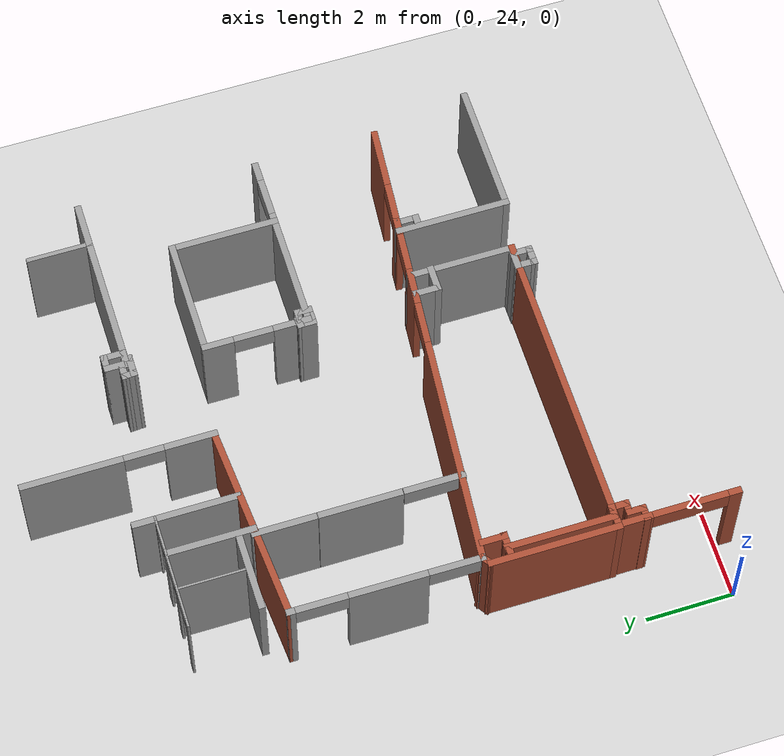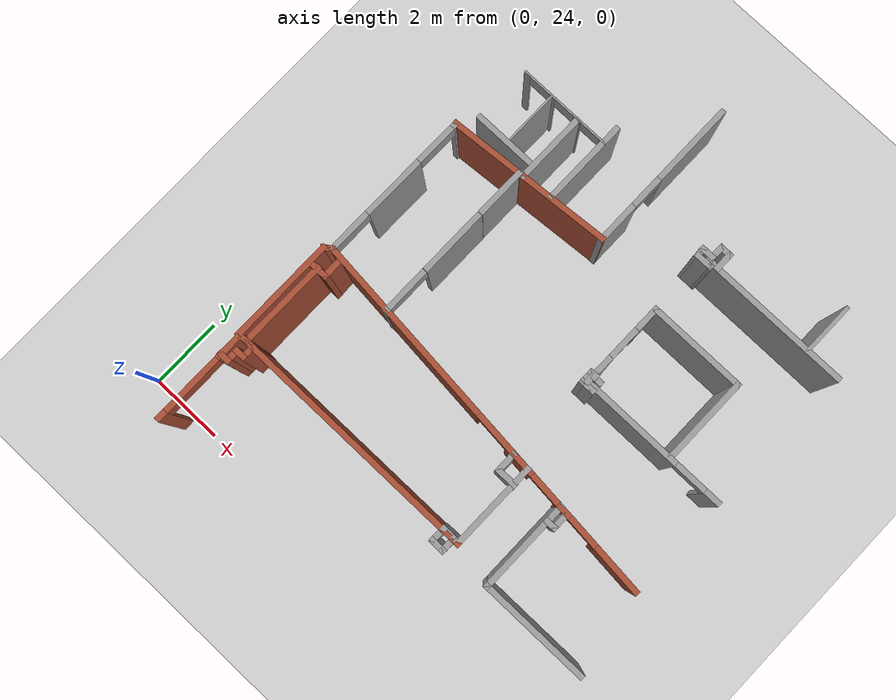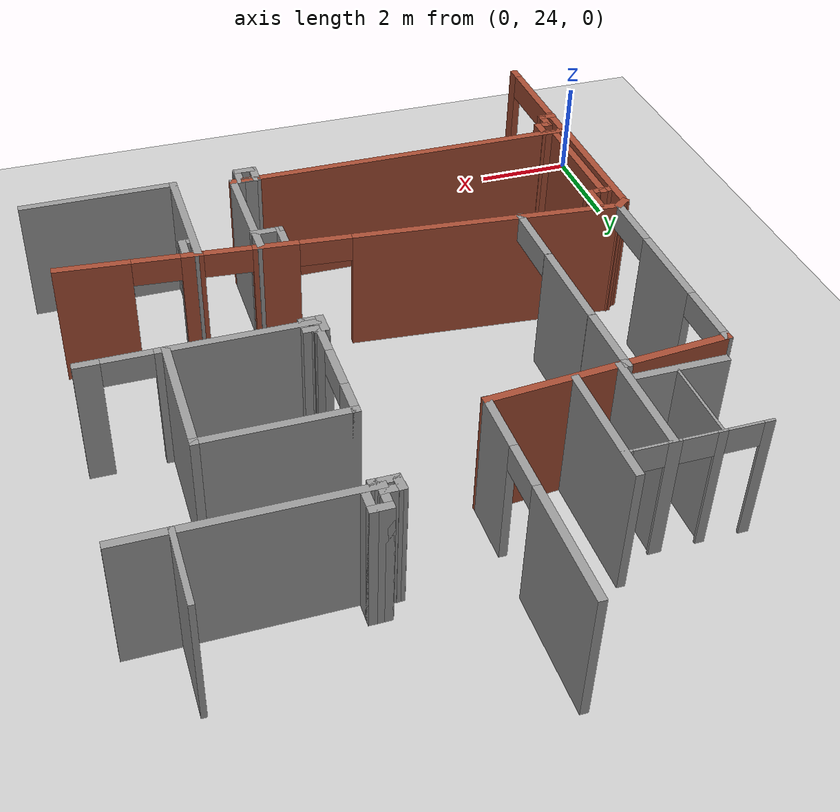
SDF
<sdf version="1.6">
 <world name="default">
  <model name="ground_plane">
   <static>1</static>
   <link name="link">
    <collision name="collision">
     <geometry><plane><normal>0 0 1</normal><size>100 100</size></plane></geometry>
     <surface><friction><ode><mu>100</mu><mu2>50</mu2></ode></friction></surface>
    </collision>
    <visual name="visual">
     <cast_shadows>0</cast_shadows>
     <geometry><plane><normal>0 0 1</normal><size>100 100</size></plane></geometry>
     <material>
      <script><uri>file://media/materials/scripts/gazebo.material</uri><name>Gazebo/Grey</name></script>
     </material>
    </visual>
   </link>
  </model>
  <model name="CVSSP">
   <pose>23.8714 24.094 0 0 -0 0</pose>
   <link name="Wall_383">
    <pose>-17.9783 11.9234 0 0 0 -1.5687</pose>
    <visual name="Wall_383_Visual_0">
     <pose>-1.04585 0 1.25 0 -0 0</pose>
     <geometry><box><size>2.30135 0.15 2.5</size></box></geometry>
     <material>
      <script><uri>file://media/materials/scripts/gazebo.material</uri><name>Gazebo/Grey</name></script>
      <ambient>0.588235 0.588235 0.588235 1</ambient>
     </material>
    </visual>
    <collision name="Wall_383_Collision_0">
     <geometry><box><size>2.30135 0.15 2.5</size></box></geometry>
     <pose>-1.04585 0 1.25 0 -0 0</pose>
    </collision>
    <visual name="Wall_383_Visual_1">
     <pose>1.60067 0 1.25 0 -0 0</pose>
     <geometry><box><size>1.1917 0.15 2.5</size></box></geometry>
     <material>
      <script><uri>file://media/materials/scripts/gazebo.material</uri><name>Gazebo/Grey</name></script>
      <ambient>0.588235 0.588235 0.588235 1</ambient>
     </material>
    </visual>
    <collision name="Wall_383_Collision_1">
     <geometry><box><size>1.1917 0.15 2.5</size></box></geometry>
     <pose>1.60067 0 1.25 0 -0 0</pose>
    </collision>
    <visual name="Wall_383_Visual_2">
     <pose>0.554823 0 2.25 0 -0 0</pose>
     <geometry><box><size>0.9 0.15 0.5</size></box></geometry>
     <material>
      <script><uri>file://media/materials/scripts/gazebo.material</uri><name>Gazebo/Grey</name></script>
      <ambient>0.588235 0.588235 0.588235 1</ambient>
     </material>
    </visual>
    <collision name="Wall_383_Collision_2">
     <geometry><box><size>0.9 0.15 0.5</size></box></geometry>
     <pose>0.554823 0 2.25 0 -0 0</pose>
    </collision>
   </link>
   <link name="Wall_384">
    <collision name="Wall_384_Collision">
     <geometry><box><size>4.62239 0.15 2.5</size></box></geometry>
     <pose>0 0 1.25 0 -0 0</pose>
    </collision>
    <visual name="Wall_384_Visual">
     <pose>0 0 1.25 0 -0 0</pose>
     <geometry><box><size>4.62239 0.15 2.5</size></box></geometry>
     <material>
      <script><uri>file://media/materials/scripts/gazebo.material</uri><name>Gazebo/Bricks</name></script>
      <ambient>1 1 1 1</ambient>
     </material>
    </visual>
    <pose>-20.2033 9.63933 0 0 0 -3.06433</pose>
   </link>
   <link name="Wall_385">
    <pose>-22.4439 7.35474 0 0 0 -1.57601</pose>
    <visual name="Wall_385_Visual_0">
     <pose>-2.08672 0 1.25 0 -0 0</pose>
     <geometry><box><size>0.200399 0.15 2.5</size></box></geometry>
     <material>
      <script><uri>file://media/materials/scripts/gazebo.material</uri><name>Gazebo/Grey</name></script>
      <ambient>0.588235 0.588235 0.588235 1</ambient>
     </material>
    </visual>
    <collision name="Wall_385_Collision_0">
     <geometry><box><size>0.200399 0.15 2.5</size></box></geometry>
     <pose>-2.08672 0 1.25 0 -0 0</pose>
    </collision>
    <visual name="Wall_385_Visual_1">
     <pose>0.046569 0 1.25 0 -0 0</pose>
     <geometry><box><size>1.75817 0.15 2.5</size></box></geometry>
     <material>
      <script><uri>file://media/materials/scripts/gazebo.material</uri><name>Gazebo/Grey</name></script>
      <ambient>0.588235 0.588235 0.588235 1</ambient>
     </material>
    </visual>
    <collision name="Wall_385_Collision_1">
     <geometry><box><size>1.75817 0.15 2.5</size></box></geometry>
     <pose>0.046569 0 1.25 0 -0 0</pose>
    </collision>
    <visual name="Wall_385_Visual_2">
     <pose>0.925336 0 1.25 0 -0 0</pose>
     <geometry><box><size>0.000635 0.15 2.5</size></box></geometry>
     <material>
      <script><uri>file://media/materials/scripts/gazebo.material</uri><name>Gazebo/Grey</name></script>
      <ambient>0.588235 0.588235 0.588235 1</ambient>
     </material>
    </visual>
    <collision name="Wall_385_Collision_2">
     <geometry><box><size>0.000635 0.15 2.5</size></box></geometry>
     <pose>0.925336 0 1.25 0 -0 0</pose>
    </collision>
    <visual name="Wall_385_Visual_3">
     <pose>2.12229 0 1.25 0 -0 0</pose>
     <geometry><box><size>0.129262 0.15 2.5</size></box></geometry>
     <material>
      <script><uri>file://media/materials/scripts/gazebo.material</uri><name>Gazebo/Grey</name></script>
      <ambient>0.588235 0.588235 0.588235 1</ambient>
     </material>
    </visual>
    <collision name="Wall_385_Collision_3">
     <geometry><box><size>0.129262 0.15 2.5</size></box></geometry>
     <pose>2.12229 0 1.25 0 -0 0</pose>
    </collision>
    <visual name="Wall_385_Visual_4">
     <pose>-1.40968 0 2.25 0 -0 0</pose>
     <geometry><box><size>1.15368 0.15 0.5</size></box></geometry>
     <material>
      <script><uri>file://media/materials/scripts/gazebo.material</uri><name>Gazebo/Grey</name></script>
      <ambient>0.588235 0.588235 0.588235 1</ambient>
     </material>
    </visual>
    <collision name="Wall_385_Collision_4">
     <geometry><box><size>1.15368 0.15 0.5</size></box></geometry>
     <pose>-1.40968 0 2.25 0 -0 0</pose>
    </collision>
    <visual name="Wall_385_Visual_5">
     <pose>1.49165 0 2.25 0 -0 0</pose>
     <geometry><box><size>1.132 0.15 0.5</size></box></geometry>
     <material>
      <script><uri>file://media/materials/scripts/gazebo.material</uri><name>Gazebo/Grey</name></script>
      <ambient>0.588235 0.588235 0.588235 1</ambient>
     </material>
    </visual>
    <collision name="Wall_385_Collision_5">
     <geometry><box><size>1.132 0.15 0.5</size></box></geometry>
     <pose>1.49165 0 2.25 0 -0 0</pose>
    </collision>
    <visual name="Wall_385_Visual_6">
     <pose>1.49165 0 2.25 0 -0 0</pose>
     <geometry><box><size>1.132 0.15 0.5</size></box></geometry>
     <material>
      <script><uri>file://media/materials/scripts/gazebo.material</uri><name>Gazebo/Grey</name></script>
      <ambient>0.588235 0.588235 0.588235 1</ambient>
     </material>
    </visual>
    <collision name="Wall_385_Collision_6">
     <geometry><box><size>1.132 0.15 0.5</size></box></geometry>
     <pose>1.49165 0 2.25 0 -0 0</pose>
    </collision>
   </link>
   <link name="Wall_386">
    <pose>-17.129 4.76187 0 0 0 -0.090044</pose>
    <visual name="Wall_386_Visual_0">
     <pose>-2.75908 0 1.25 0 -0 0</pose>
     <geometry><box><size>5.32665 0.15 2.5</size></box></geometry>
     <material>
      <script><uri>file://media/materials/scripts/gazebo.material</uri><name>Gazebo/Bricks</name></script>
      <ambient>1 1 1 1</ambient>
     </material>
    </visual>
    <collision name="Wall_386_Collision_0">
     <geometry><box><size>5.32665 0.15 2.5</size></box></geometry>
     <pose>-2.75908 0 1.25 0 -0 0</pose>
    </collision>
    <visual name="Wall_386_Visual_1">
     <pose>1.33587 0 1.25 0 -0 0</pose>
     <geometry><box><size>0.878962 0.15 2.5</size></box></geometry>
     <material>
      <script><uri>file://media/materials/scripts/gazebo.material</uri><name>Gazebo/Bricks</name></script>
      <ambient>1 1 1 1</ambient>
     </material>
    </visual>
    <collision name="Wall_386_Collision_1">
     <geometry><box><size>0.878962 0.15 2.5</size></box></geometry>
     <pose>1.33587 0 1.25 0 -0 0</pose>
    </collision>
    <visual name="Wall_386_Visual_2">
     <pose>2.88503 0 1.25 0 -0 0</pose>
     <geometry><box><size>0.419343 0.15 2.5</size></box></geometry>
     <material>
      <script><uri>file://media/materials/scripts/gazebo.material</uri><name>Gazebo/Bricks</name></script>
      <ambient>1 1 1 1</ambient>
     </material>
    </visual>
    <collision name="Wall_386_Collision_2">
     <geometry><box><size>0.419343 0.15 2.5</size></box></geometry>
     <pose>2.88503 0 1.25 0 -0 0</pose>
    </collision>
    <visual name="Wall_386_Visual_3">
     <pose>4.70855 0 1.25 0 -0 0</pose>
     <geometry><box><size>1.4277 0.15 2.5</size></box></geometry>
     <material>
      <script><uri>file://media/materials/scripts/gazebo.material</uri><name>Gazebo/Bricks</name></script>
      <ambient>1 1 1 1</ambient>
     </material>
    </visual>
    <collision name="Wall_386_Collision_3">
     <geometry><box><size>1.4277 0.15 2.5</size></box></geometry>
     <pose>4.70855 0 1.25 0 -0 0</pose>
    </collision>
    <visual name="Wall_386_Visual_4">
     <pose>0.400321 0 2.25 0 -0 0</pose>
     <geometry><box><size>0.992148 0.15 0.5</size></box></geometry>
     <material>
      <script><uri>file://media/materials/scripts/gazebo.material</uri><name>Gazebo/Bricks</name></script>
      <ambient>1 1 1 1</ambient>
     </material>
    </visual>
    <collision name="Wall_386_Collision_4">
     <geometry><box><size>0.992148 0.15 0.5</size></box></geometry>
     <pose>0.400321 0 2.25 0 -0 0</pose>
    </collision>
    <visual name="Wall_386_Visual_5">
     <pose>2.22536 0 2.25 0 -0 0</pose>
     <geometry><box><size>0.9 0.15 0.5</size></box></geometry>
     <material>
      <script><uri>file://media/materials/scripts/gazebo.material</uri><name>Gazebo/Bricks</name></script>
      <ambient>1 1 1 1</ambient>
     </material>
    </visual>
    <collision name="Wall_386_Collision_5">
     <geometry><box><size>0.9 0.15 0.5</size></box></geometry>
     <pose>2.22536 0 2.25 0 -0 0</pose>
    </collision>
    <visual name="Wall_386_Visual_6">
     <pose>3.5447 0 2.25 0 -0 0</pose>
     <geometry><box><size>0.9 0.15 0.5</size></box></geometry>
     <material>
      <script><uri>file://media/materials/scripts/gazebo.material</uri><name>Gazebo/Bricks</name></script>
      <ambient>1 1 1 1</ambient>
     </material>
    </visual>
    <collision name="Wall_386_Collision_6">
     <geometry><box><size>0.9 0.15 0.5</size></box></geometry>
     <pose>3.5447 0 2.25 0 -0 0</pose>
    </collision>
   </link>
   <link name="Wall_389">
    <pose>-20.4957 7.35057 0 0 -0 1.5708</pose>
    <visual name="Wall_389_Visual_0">
     <pose>-2.30009 0 1.25 0 -0 0</pose>
     <geometry><box><size>0.14981 0.15 2.5</size></box></geometry>
     <material>
      <script><uri>file://media/materials/scripts/gazebo.material</uri><name>Gazebo/Grey</name></script>
      <ambient>0.588235 0.588235 0.588235 1</ambient>
     </material>
    </visual>
    <collision name="Wall_389_Collision_0">
     <geometry><box><size>0.14981 0.15 2.5</size></box></geometry>
     <pose>-2.30009 0 1.25 0 -0 0</pose>
    </collision>
    <visual name="Wall_389_Visual_1">
     <pose>-0.035618 0 1.25 0 -0 0</pose>
     <geometry><box><size>1.88714 0.15 2.5</size></box></geometry>
     <material>
      <script><uri>file://media/materials/scripts/gazebo.material</uri><name>Gazebo/Grey</name></script>
      <ambient>0.588235 0.588235 0.588235 1</ambient>
     </material>
    </visual>
    <collision name="Wall_389_Collision_1">
     <geometry><box><size>1.88714 0.15 2.5</size></box></geometry>
     <pose>-0.035618 0 1.25 0 -0 0</pose>
    </collision>
    <visual name="Wall_389_Visual_2">
     <pose>1.64628 0 1.25 0 -0 0</pose>
     <geometry><box><size>1.45744 0.15 2.5</size></box></geometry>
     <material>
      <script><uri>file://media/materials/scripts/gazebo.material</uri><name>Gazebo/Grey</name></script>
      <ambient>0.588235 0.588235 0.588235 1</ambient>
     </material>
    </visual>
    <collision name="Wall_389_Collision_2">
     <geometry><box><size>1.45744 0.15 2.5</size></box></geometry>
     <pose>1.64628 0 1.25 0 -0 0</pose>
    </collision>
    <visual name="Wall_389_Visual_3">
     <pose>2.27598 0 1.25 0 -0 0</pose>
     <geometry><box><size>0.198046 0.15 2.5</size></box></geometry>
     <material>
      <script><uri>file://media/materials/scripts/gazebo.material</uri><name>Gazebo/Grey</name></script>
      <ambient>0.588235 0.588235 0.588235 1</ambient>
     </material>
    </visual>
    <collision name="Wall_389_Collision_3">
     <geometry><box><size>0.198046 0.15 2.5</size></box></geometry>
     <pose>2.27598 0 1.25 0 -0 0</pose>
    </collision>
    <visual name="Wall_389_Visual_4">
     <pose>-1.60696 0 2.25 0 -0 0</pose>
     <geometry><box><size>1.23646 0.15 0.5</size></box></geometry>
     <material>
      <script><uri>file://media/materials/scripts/gazebo.material</uri><name>Gazebo/Grey</name></script>
      <ambient>0.588235 0.588235 0.588235 1</ambient>
     </material>
    </visual>
    <collision name="Wall_389_Collision_4">
     <geometry><box><size>1.23646 0.15 0.5</size></box></geometry>
     <pose>-1.60696 0 2.25 0 -0 0</pose>
    </collision>
    <visual name="Wall_389_Visual_5">
     <pose>0.912756 0 2.25 0 -0 0</pose>
     <geometry><box><size>0.009604 0.15 0.5</size></box></geometry>
     <material>
      <script><uri>file://media/materials/scripts/gazebo.material</uri><name>Gazebo/Grey</name></script>
      <ambient>0.588235 0.588235 0.588235 1</ambient>
     </material>
    </visual>
    <collision name="Wall_389_Collision_5">
     <geometry><box><size>0.009604 0.15 0.5</size></box></geometry>
     <pose>0.912756 0 2.25 0 -0 0</pose>
    </collision>
   </link>
   <link name="Wall_398">
    <collision name="Wall_398_Collision">
     <geometry><box><size>2.41151 0.15 2.5</size></box></geometry>
     <pose>0 0 1.25 0 -0 0</pose>
    </collision>
    <visual name="Wall_398_Visual">
     <pose>0 0 1.25 0 -0 0</pose>
     <geometry><box><size>2.41151 0.15 2.5</size></box></geometry>
     <material>
      <script><uri>file://media/materials/scripts/gazebo.material</uri><name>Gazebo/Grey</name></script>
      <ambient>1 1 1 1</ambient>
     </material>
    </visual>
    <pose>-19.5452 10.8682 0 0 0 -1.5708</pose>
   </link>
   <link name="Wall_401">
    <collision name="Wall_401_Collision">
     <geometry><box><size>2.01472 0.15 2.5</size></box></geometry>
     <pose>0 0 1.25 0 -0 0</pose>
    </collision>
    <visual name="Wall_401_Visual">
     <pose>0 0 1.25 0 -0 0</pose>
     <geometry><box><size>2.01472 0.15 2.5</size></box></geometry>
     <material>
      <script><uri>file://media/materials/scripts/gazebo.material</uri><name>Gazebo/Grey</name></script>
      <ambient>1 1 1 1</ambient>
     </material>
    </visual>
    <pose>-20.3783 10.5641 0 0 -0 1.5708</pose>
   </link>
   <link name="Wall_403">
    <collision name="Wall_403_Collision">
     <geometry><box><size>1.75 0.15 2.5</size></box></geometry>
     <pose>0 0 1.25 0 -0 0</pose>
    </collision>
    <visual name="Wall_403_Visual">
     <pose>0 0 1.25 0 -0 0</pose>
     <geometry><box><size>1.75 0.15 2.5</size></box></geometry>
     <material>
      <script><uri>file://media/materials/scripts/gazebo.material</uri><name>Gazebo/Grey</name></script>
      <ambient>1 1 1 1</ambient>
     </material>
    </visual>
    <pose>-21.3108 9.97555 0 0 -0 0</pose>
   </link>
   <link name="Wall_405">
    <collision name="Wall_405_Collision">
     <geometry><box><size>1.558 0.05 2.5</size></box></geometry>
     <pose>0 0 1.25 0 -0 0</pose>
    </collision>
    <visual name="Wall_405_Visual">
     <pose>0 0 1.25 0 -0 0</pose>
     <geometry><box><size>1.558 0.05 2.5</size></box></geometry>
     <material>
      <script><uri>file://media/materials/scripts/gazebo.material</uri><name>Gazebo/Grey</name></script>
      <ambient>1 1 1 1</ambient>
     </material>
    </visual>
    <pose>-21.2251 10.756 0 0 -0 1.5708</pose>
   </link>
   <link name="Wall_409">
    <pose>-20.7979 11.549 0 0 -0 0</pose>
    <visual name="Wall_409_Visual_0">
     <pose>-1.22709 0 1.25 0 -0 0</pose>
     <geometry><box><size>0.196113 0.05 2.5</size></box></geometry>
     <material>
      <script><uri>file://media/materials/scripts/gazebo.material</uri><name>Gazebo/Grey</name></script>
      <ambient>1 1 1 1</ambient>
     </material>
    </visual>
    <collision name="Wall_409_Collision_0">
     <geometry><box><size>0.196113 0.05 2.5</size></box></geometry>
     <pose>-1.22709 0 1.25 0 -0 0</pose>
    </collision>
    <visual name="Wall_409_Visual_1">
     <pose>-0.41515 0 1.25 0 -0 0</pose>
     <geometry><box><size>0.172188 0.05 2.5</size></box></geometry>
     <material>
      <script><uri>file://media/materials/scripts/gazebo.material</uri><name>Gazebo/Grey</name></script>
      <ambient>1 1 1 1</ambient>
     </material>
    </visual>
    <collision name="Wall_409_Collision_1">
     <geometry><box><size>0.172188 0.05 2.5</size></box></geometry>
     <pose>-0.41515 0 1.25 0 -0 0</pose>
    </collision>
    <visual name="Wall_409_Visual_2">
     <pose>0.406657 0 1.25 0 -0 0</pose>
     <geometry><box><size>0.24285 0.05 2.5</size></box></geometry>
     <material>
      <script><uri>file://media/materials/scripts/gazebo.material</uri><name>Gazebo/Grey</name></script>
      <ambient>1 1 1 1</ambient>
     </material>
    </visual>
    <collision name="Wall_409_Collision_2">
     <geometry><box><size>0.24285 0.05 2.5</size></box></geometry>
     <pose>0.406657 0 1.25 0 -0 0</pose>
    </collision>
    <visual name="Wall_409_Visual_3">
     <pose>1.22248 0 1.25 0 -0 0</pose>
     <geometry><box><size>0.205332 0.05 2.5</size></box></geometry>
     <material>
      <script><uri>file://media/materials/scripts/gazebo.material</uri><name>Gazebo/Grey</name></script>
      <ambient>1 1 1 1</ambient>
     </material>
    </visual>
    <collision name="Wall_409_Collision_3">
     <geometry><box><size>0.205332 0.05 2.5</size></box></geometry>
     <pose>1.22248 0 1.25 0 -0 0</pose>
    </collision>
    <visual name="Wall_409_Visual_4">
     <pose>-0.815138 0 2.25 0 -0 0</pose>
     <geometry><box><size>0.627788 0.05 0.5</size></box></geometry>
     <material>
      <script><uri>file://media/materials/scripts/gazebo.material</uri><name>Gazebo/Grey</name></script>
      <ambient>1 1 1 1</ambient>
     </material>
    </visual>
    <collision name="Wall_409_Collision_4">
     <geometry><box><size>0.627788 0.05 0.5</size></box></geometry>
     <pose>-0.815138 0 2.25 0 -0 0</pose>
    </collision>
    <visual name="Wall_409_Visual_5">
     <pose>-0.021912 0 2.25 0 -0 0</pose>
     <geometry><box><size>0.614288 0.05 0.5</size></box></geometry>
     <material>
      <script><uri>file://media/materials/scripts/gazebo.material</uri><name>Gazebo/Grey</name></script>
      <ambient>1 1 1 1</ambient>
     </material>
    </visual>
    <collision name="Wall_409_Collision_5">
     <geometry><box><size>0.614288 0.05 0.5</size></box></geometry>
     <pose>-0.021912 0 2.25 0 -0 0</pose>
    </collision>
    <visual name="Wall_409_Visual_6">
     <pose>0.823948 0 2.25 0 -0 0</pose>
     <geometry><box><size>0.591732 0.05 0.5</size></box></geometry>
     <material>
      <script><uri>file://media/materials/scripts/gazebo.material</uri><name>Gazebo/Grey</name></script>
      <ambient>1 1 1 1</ambient>
     </material>
    </visual>
    <collision name="Wall_409_Collision_6">
     <geometry><box><size>0.591732 0.05 0.5</size></box></geometry>
     <pose>0.823948 0 2.25 0 -0 0</pose>
    </collision>
   </link>
   <link name="Wall_411">
    <pose>-13.8531 7.07942 0 0 -0 3.14159</pose>
    <visual name="Wall_411_Visual_0">
     <pose>-1.88996 0 1.25 0 -0 0</pose>
     <geometry><box><size>0.470089 0.15 2.5</size></box></geometry>
     <material>
      <script><uri>file://media/materials/scripts/gazebo.material</uri><name>Gazebo/Grey</name></script>
      <ambient>0.588235 0.588235 0.588235 1</ambient>
     </material>
    </visual>
    <collision name="Wall_411_Collision_0">
     <geometry><box><size>0.470089 0.15 2.5</size></box></geometry>
     <pose>-1.88996 0 1.25 0 -0 0</pose>
    </collision>
    <visual name="Wall_411_Visual_1">
     <pose>0.685044 0 1.25 0 -0 0</pose>
     <geometry><box><size>2.87991 0.15 2.5</size></box></geometry>
     <material>
      <script><uri>file://media/materials/scripts/gazebo.material</uri><name>Gazebo/Grey</name></script>
      <ambient>0.588235 0.588235 0.588235 1</ambient>
     </material>
    </visual>
    <collision name="Wall_411_Collision_1">
     <geometry><box><size>2.87991 0.15 2.5</size></box></geometry>
     <pose>0.685044 0 1.25 0 -0 0</pose>
    </collision>
    <visual name="Wall_411_Visual_2">
     <pose>-1.20491 0 2.25 0 -0 0</pose>
     <geometry><box><size>0.9 0.15 0.5</size></box></geometry>
     <material>
      <script><uri>file://media/materials/scripts/gazebo.material</uri><name>Gazebo/Grey</name></script>
      <ambient>0.588235 0.588235 0.588235 1</ambient>
     </material>
    </visual>
    <collision name="Wall_411_Collision_2">
     <geometry><box><size>0.9 0.15 0.5</size></box></geometry>
     <pose>-1.20491 0 2.25 0 -0 0</pose>
    </collision>
   </link>
   <link name="Wall_412">
    <pose>-15.9031 8.25442 0 0 -0 1.5708</pose>
    <visual name="Wall_412_Visual_0">
     <pose>-0.812626 0 1.25 0 -0 0</pose>
     <geometry><box><size>0.874747 0.15 2.5</size></box></geometry>
     <material>
      <script><uri>file://media/materials/scripts/gazebo.material</uri><name>Gazebo/Grey</name></script>
      <ambient>1 1 1 1</ambient>
     </material>
    </visual>
    <collision name="Wall_412_Collision_0">
     <geometry><box><size>0.874747 0.15 2.5</size></box></geometry>
     <pose>-0.812626 0 1.25 0 -0 0</pose>
    </collision>
    <visual name="Wall_412_Visual_1">
     <pose>0.887374 0 1.25 0 -0 0</pose>
     <geometry><box><size>0.725253 0.15 2.5</size></box></geometry>
     <material>
      <script><uri>file://media/materials/scripts/gazebo.material</uri><name>Gazebo/Grey</name></script>
      <ambient>1 1 1 1</ambient>
     </material>
    </visual>
    <collision name="Wall_412_Collision_1">
     <geometry><box><size>0.725253 0.15 2.5</size></box></geometry>
     <pose>0.887374 0 1.25 0 -0 0</pose>
    </collision>
    <visual name="Wall_412_Visual_2">
     <pose>0.074747 0 2.25 0 -0 0</pose>
     <geometry><box><size>0.9 0.15 0.5</size></box></geometry>
     <material>
      <script><uri>file://media/materials/scripts/gazebo.material</uri><name>Gazebo/Grey</name></script>
      <ambient>1 1 1 1</ambient>
     </material>
    </visual>
    <collision name="Wall_412_Collision_2">
     <geometry><box><size>0.9 0.15 0.5</size></box></geometry>
     <pose>0.074747 0 2.25 0 -0 0</pose>
    </collision>
   </link>
   <link name="Wall_413">
    <collision name="Wall_413_Collision">
     <geometry><box><size>2.75 0.15 2.5</size></box></geometry>
     <pose>0 0 1.25 0 -0 0</pose>
    </collision>
    <visual name="Wall_413_Visual">
     <pose>0 0 1.25 0 -0 0</pose>
     <geometry><box><size>2.75 0.15 2.5</size></box></geometry>
     <material>
      <script><uri>file://media/materials/scripts/gazebo.material</uri><name>Gazebo/Grey</name></script>
      <ambient>0.588235 0.588235 0.588235 1</ambient>
     </material>
    </visual>
    <pose>-14.6031 9.42942 0 0 -0 0</pose>
   </link>
   <link name="Wall_414">
    <collision name="Wall_414_Collision">
     <geometry><box><size>2.5 0.15 2.5</size></box></geometry>
     <pose>0 0 1.25 0 -0 0</pose>
    </collision>
    <visual name="Wall_414_Visual">
     <pose>0 0 1.25 0 -0 0</pose>
     <geometry><box><size>2.5 0.15 2.5</size></box></geometry>
     <material>
      <script><uri>file://media/materials/scripts/gazebo.material</uri><name>Gazebo/Grey</name></script>
      <ambient>0.588235 0.588235 0.588235 1</ambient>
     </material>
    </visual>
    <pose>-13.3031 8.25442 0 0 0 -1.5708</pose>
   </link>
   <link name="Wall_417">
    <collision name="Wall_417_Collision">
     <geometry><box><size>4.25 0.15 2.5</size></box></geometry>
     <pose>0 0 1.25 0 -0 0</pose>
    </collision>
    <visual name="Wall_417_Visual">
     <pose>0 0 1.25 0 -0 0</pose>
     <geometry><box><size>4.25 0.15 2.5</size></box></geometry>
     <material>
      <script><uri>file://media/materials/scripts/gazebo.material</uri><name>Gazebo/Grey</name></script>
      <ambient>1 1 1 1</ambient>
     </material>
    </visual>
    <pose>-13.7515 11.1539 0 0 -0 0</pose>
   </link>
   <link name="Wall_419">
    <collision name="Wall_419_Collision">
     <geometry><box><size>1.502 0.1 2.5</size></box></geometry>
     <pose>0 0 1.25 0 -0 0</pose>
    </collision>
    <visual name="Wall_419_Visual">
     <pose>0 0 1.25 0 -0 0</pose>
     <geometry><box><size>1.502 0.1 2.5</size></box></geometry>
     <material>
      <script><uri>file://media/materials/scripts/gazebo.material</uri><name>Gazebo/Grey</name></script>
      <ambient>0.588235 0.588235 0.588235 1</ambient>
     </material>
    </visual>
    <pose>-12.6454 11.8362 0 0 -0 1.5708</pose>
   </link>
   <link name="Wall_426">
    <collision name="Wall_426_Collision">
     <geometry><box><size>2.5 0.15 2.5</size></box></geometry>
     <pose>0 0 1.25 0 -0 0</pose>
    </collision>
    <visual name="Wall_426_Visual">
     <pose>0 0 1.25 0 -0 0</pose>
     <geometry><box><size>2.5 0.15 2.5</size></box></geometry>
     <material>
      <script><uri>file://media/materials/scripts/gazebo.material</uri><name>Gazebo/Grey</name></script>
      <ambient>0.588235 0.588235 0.588235 1</ambient>
     </material>
    </visual>
    <pose>-15.526 3.44298 0 0 0 -1.5708</pose>
   </link>
   <link name="Wall_427">
    <collision name="Wall_427_Collision">
     <geometry><box><size>7.25 0.15 2.5</size></box></geometry>
     <pose>0 0 1.25 0 -0 0</pose>
    </collision>
    <visual name="Wall_427_Visual">
     <pose>0 0 1.25 0 -0 0</pose>
     <geometry><box><size>7.25 0.15 2.5</size></box></geometry>
     <material>
      <script><uri>file://media/materials/scripts/gazebo.material</uri><name>Gazebo/Bricks</name></script>
      <ambient>1 1 1 1</ambient>
     </material>
    </visual>
    <pose>-19.076 2.26798 0 0 -0 3.14159</pose>
   </link>
   <link name="Wall_428">
    <collision name="Wall_428_Collision">
     <geometry><box><size>3 0.15 2.5</size></box></geometry>
     <pose>0 0 1.25 0 -0 0</pose>
    </collision>
    <visual name="Wall_428_Visual">
     <pose>0 0 1.25 0 -0 0</pose>
     <geometry><box><size>3 0.15 2.5</size></box></geometry>
     <material>
      <script><uri>file://media/materials/scripts/gazebo.material</uri><name>Gazebo/Bricks</name></script>
      <ambient>1 1 1 1</ambient>
     </material>
    </visual>
    <pose>-22.626 3.69298 0 0 -0 1.5708</pose>
   </link>
   <link name="Wall_429">
    <collision name="Wall_429_Collision">
     <geometry><box><size>0.362141 0.15 2.5</size></box></geometry>
     <pose>0 0 1.25 0 -0 0</pose>
    </collision>
    <visual name="Wall_429_Visual">
     <pose>0 0 1.25 0 -0 0</pose>
     <geometry><box><size>0.362141 0.15 2.5</size></box></geometry>
     <material>
      <script><uri>file://media/materials/scripts/gazebo.material</uri><name>Gazebo/Bricks</name></script>
      <ambient>1 1 1 1</ambient>
     </material>
    </visual>
    <pose>-22.5404 5.18036 0 0 -0 0.630038</pose>
   </link>
   <link name="Wall_431">
    <collision name="Wall_431_Collision">
     <geometry><box><size>0.669961 0.15 2.5</size></box></geometry>
     <pose>0 0 1.25 0 -0 0</pose>
    </collision>
    <visual name="Wall_431_Visual">
     <pose>0 0 1.25 0 -0 0</pose>
     <geometry><box><size>0.669961 0.15 2.5</size></box></geometry>
     <material>
      <script><uri>file://media/materials/scripts/gazebo.material</uri><name>Gazebo/Bricks</name></script>
      <ambient>1 1 1 1</ambient>
     </material>
    </visual>
    <pose>-22.3657 4.64872 0 0 0 -0.002619</pose>
   </link>
   <link name="Wall_432">
    <collision name="Wall_432_Collision">
     <geometry><box><size>0.639722 0.15 2.5</size></box></geometry>
     <pose>0 0 1.25 0 -0 0</pose>
    </collision>
    <visual name="Wall_432_Visual">
     <pose>0 0 1.25 0 -0 0</pose>
     <geometry><box><size>0.639722 0.15 2.5</size></box></geometry>
     <material>
      <script><uri>file://media/materials/scripts/gazebo.material</uri><name>Gazebo/Bricks</name></script>
      <ambient>1 1 1 1</ambient>
     </material>
    </visual>
    <pose>-22.119 4.8929 0 0 -0 1.5708</pose>
   </link>
   <link name="Wall_434">
    <collision name="Wall_434_Collision">
     <geometry><box><size>0.640034 0.15 2.5</size></box></geometry>
     <pose>0 0 1.25 0 -0 0</pose>
    </collision>
    <visual name="Wall_434_Visual">
     <pose>0 0 1.25 0 -0 0</pose>
     <geometry><box><size>0.640034 0.15 2.5</size></box></geometry>
     <material>
      <script><uri>file://media/materials/scripts/gazebo.material</uri><name>Gazebo/Grey</name></script>
      <ambient>1 1 1 1</ambient>
     </material>
    </visual>
    <pose>-15.7533 4.14574 0 0 -0 3.14159</pose>
   </link>
   <link name="Wall_435">
    <collision name="Wall_435_Collision">
     <geometry><box><size>0.639722 0.15 2.5</size></box></geometry>
     <pose>0 0 1.25 0 -0 0</pose>
    </collision>
    <visual name="Wall_435_Visual">
     <pose>0 0 1.25 0 -0 0</pose>
     <geometry><box><size>0.639722 0.15 2.5</size></box></geometry>
     <material>
      <script><uri>file://media/materials/scripts/gazebo.material</uri><name>Gazebo/Grey</name></script>
      <ambient>0.588235 0.588235 0.588235 1</ambient>
     </material>
    </visual>
    <pose>-15.9982 4.3906 0 0 -0 1.5708</pose>
   </link>
   <link name="Wall_441">
    <pose>-22.5881 0.881009 0 0 -0 1.5708</pose>
    <visual name="Wall_441_Visual_0">
     <pose>-1.22545 0 1.25 0 -0 0</pose>
     <geometry><box><size>0.299105 0.15 2.5</size></box></geometry>
     <material>
      <script><uri>file://media/materials/scripts/gazebo.material</uri><name>Gazebo/Bricks</name></script>
      <ambient>1 1 1 1</ambient>
     </material>
    </visual>
    <collision name="Wall_441_Collision_0">
     <geometry><box><size>0.299105 0.15 2.5</size></box></geometry>
     <pose>-1.22545 0 1.25 0 -0 0</pose>
    </collision>
    <visual name="Wall_441_Visual_1">
     <pose>1.00205 0 1.25 0 -0 0</pose>
     <geometry><box><size>0.745895 0.15 2.5</size></box></geometry>
     <material>
      <script><uri>file://media/materials/scripts/gazebo.material</uri><name>Gazebo/Bricks</name></script>
      <ambient>1 1 1 1</ambient>
     </material>
    </visual>
    <collision name="Wall_441_Collision_1">
     <geometry><box><size>0.745895 0.15 2.5</size></box></geometry>
     <pose>1.00205 0 1.25 0 -0 0</pose>
    </collision>
    <visual name="Wall_441_Visual_2">
     <pose>-0.223395 0 2.25 0 -0 0</pose>
     <geometry><box><size>1.705 0.15 0.5</size></box></geometry>
     <material>
      <script><uri>file://media/materials/scripts/gazebo.material</uri><name>Gazebo/Bricks</name></script>
      <ambient>1 1 1 1</ambient>
     </material>
    </visual>
    <collision name="Wall_441_Collision_2">
     <geometry><box><size>1.705 0.15 0.5</size></box></geometry>
     <pose>-0.223395 0 2.25 0 -0 0</pose>
    </collision>
   </link>
   <link name="Wall_443">
    <collision name="Wall_443_Collision">
     <geometry><box><size>3.08833 0.15 2.5</size></box></geometry>
     <pose>0 0 1.25 0 -0 0</pose>
    </collision>
    <visual name="Wall_443_Visual">
     <pose>0 0 1.25 0 -0 0</pose>
     <geometry><box><size>3.08833 0.15 2.5</size></box></geometry>
     <material>
      <script><uri>file://media/materials/scripts/gazebo.material</uri><name>Gazebo/Grey</name></script>
      <ambient>0.588235 0.588235 0.588235 1</ambient>
     </material>
    </visual>
    <pose>-12.9025 2.02945 0 0 -0 3.14159</pose>
   </link>
   <link name="Wall_444">
    <collision name="Wall_444_Collision">
     <geometry><box><size>2.63359 0.15 2.5</size></box></geometry>
     <pose>0 0 1.25 0 -0 0</pose>
    </collision>
    <visual name="Wall_444_Visual">
     <pose>0 0 1.25 0 -0 0</pose>
     <geometry><box><size>2.63359 0.15 2.5</size></box></geometry>
     <material>
      <script><uri>file://media/materials/scripts/gazebo.material</uri><name>Gazebo/Grey</name></script>
      <ambient>0.588235 0.588235 0.588235 1</ambient>
     </material>
    </visual>
    <pose>-14.3716 3.27124 0 0 -0 1.5708</pose>
   </link>
   <link name="Wall_683">
    <collision name="Wall_683_Collision">
     <geometry><box><size>0.416002 0.15 2.5</size></box></geometry>
     <pose>0 0 1.25 0 -0 0</pose>
    </collision>
    <visual name="Wall_683_Visual">
     <pose>0 0 1.25 0 -0 0</pose>
     <geometry><box><size>0.416002 0.15 2.5</size></box></geometry>
     <material>
      <script><uri>file://media/materials/scripts/gazebo.material</uri><name>Gazebo/Grey</name></script>
      <ambient>1 1 1 1</ambient>
     </material>
    </visual>
    <pose>-15.6425 11.5855 0 0 -0 0</pose>
   </link>
   <link name="Wall_684">
    <collision name="Wall_684_Collision">
     <geometry><box><size>0.576434 0.15 2.5</size></box></geometry>
     <pose>0 0 1.25 0 -0 0</pose>
    </collision>
    <visual name="Wall_684_Visual">
     <pose>0 0 1.25 0 -0 0</pose>
     <geometry><box><size>0.576434 0.15 2.5</size></box></geometry>
     <material>
      <script><uri>file://media/materials/scripts/gazebo.material</uri><name>Gazebo/Grey</name></script>
      <ambient>1 1 1 1</ambient>
     </material>
    </visual>
    <pose>-15.5095 11.3727 0 0 0 -1.5708</pose>
   </link>
   <link name="Wall_685">
    <collision name="Wall_685_Collision">
     <geometry><box><size>0.296904 0.15 2.5</size></box></geometry>
     <pose>0 0 1.25 0 -0 0</pose>
    </collision>
    <visual name="Wall_685_Visual">
     <pose>0 0 1.25 0 -0 0</pose>
     <geometry><box><size>0.296904 0.15 2.5</size></box></geometry>
     <material>
      <script><uri>file://media/materials/scripts/gazebo.material</uri><name>Gazebo/Grey</name></script>
      <ambient>1 1 1 1</ambient>
     </material>
    </visual>
    <pose>-15.5827 11.1599 0 0 -0 3.14159</pose>
   </link>
   <link name="Wall_686">
    <collision name="Wall_686_Collision">
     <geometry><box><size>0.244046 0.15 2.5</size></box></geometry>
     <pose>0 0 1.25 0 -0 0</pose>
    </collision>
    <visual name="Wall_686_Visual">
     <pose>0 0 1.25 0 -0 0</pose>
     <geometry><box><size>0.244046 0.15 2.5</size></box></geometry>
     <material>
      <script><uri>file://media/materials/scripts/gazebo.material</uri><name>Gazebo/Grey</name></script>
      <ambient>1 1 1 1</ambient>
     </material>
    </visual>
    <pose>-15.6625 11.1134 0 0 0 -1.71269</pose>
   </link>
   <link name="Wall_687">
    <collision name="Wall_687_Collision">
     <geometry><box><size>0.535932 0.15 2.5</size></box></geometry>
     <pose>0 0 1.25 0 -0 0</pose>
    </collision>
    <visual name="Wall_687_Visual">
     <pose>0 0 1.25 0 -0 0</pose>
     <geometry><box><size>0.535932 0.15 2.5</size></box></geometry>
     <material>
      <script><uri>file://media/materials/scripts/gazebo.material</uri><name>Gazebo/Grey</name></script>
      <ambient>1 1 1 1</ambient>
     </material>
    </visual>
    <pose>-15.862 11.0668 0 0 -0 3.14159</pose>
   </link>
   <link name="Wall_688">
    <collision name="Wall_688_Collision">
     <geometry><box><size>0.349944 0.15 2.5</size></box></geometry>
     <pose>0 0 1.25 0 -0 0</pose>
    </collision>
    <visual name="Wall_688_Visual">
     <pose>0 0 1.25 0 -0 0</pose>
     <geometry><box><size>0.349944 0.15 2.5</size></box></geometry>
     <material>
      <script><uri>file://media/materials/scripts/gazebo.material</uri><name>Gazebo/Grey</name></script>
      <ambient>1 1 1 1</ambient>
     </material>
    </visual>
    <pose>-16.0615 11.1666 0 0 -0 1.63736</pose>
   </link>
   <link name="Wall_689">
    <collision name="Wall_689_Collision">
     <geometry><box><size>0.442904 0.15 2.5</size></box></geometry>
     <pose>0 0 1.25 0 -0 0</pose>
    </collision>
    <visual name="Wall_689_Visual">
     <pose>0 0 1.25 0 -0 0</pose>
     <geometry><box><size>0.442904 0.15 2.5</size></box></geometry>
     <material>
      <script><uri>file://media/materials/scripts/gazebo.material</uri><name>Gazebo/Grey</name></script>
      <ambient>1 1 1 1</ambient>
     </material>
    </visual>
    <pose>-15.9218 11.2663 0 0 -0 0</pose>
   </link>
   <link name="Wall_690">
    <collision name="Wall_690_Collision">
     <geometry><box><size>0.469202 0.15 2.5</size></box></geometry>
     <pose>0 0 1.25 0 -0 0</pose>
    </collision>
    <visual name="Wall_690_Visual">
     <pose>0 0 1.25 0 -0 0</pose>
     <geometry><box><size>0.469202 0.15 2.5</size></box></geometry>
     <material>
      <script><uri>file://media/materials/scripts/gazebo.material</uri><name>Gazebo/Grey</name></script>
      <ambient>1 1 1 1</ambient>
     </material>
    </visual>
    <pose>-15.7755 11.4259 0 0 -0 1.5708</pose>
   </link>
   <link name="Wall_697">
    <collision name="Wall_697_Collision">
     <geometry><box><size>0.438966 0.15 2.5</size></box></geometry>
     <pose>0 0 1.25 0 -0 0</pose>
    </collision>
    <visual name="Wall_697_Visual">
     <pose>0 0 1.25 0 -0 0</pose>
     <geometry><box><size>0.438966 0.15 2.5</size></box></geometry>
     <material>
      <script><uri>file://media/materials/scripts/gazebo.material</uri><name>Gazebo/Grey</name></script>
      <ambient>1 1 1 1</ambient>
     </material>
    </visual>
    <pose>-15.9915 7.1434 0 0 0 -1.5708</pose>
   </link>
   <link name="Wall_698">
    <collision name="Wall_698_Collision">
     <geometry><box><size>0.461779 0.15 2.5</size></box></geometry>
     <pose>0 0 1.25 0 -0 0</pose>
    </collision>
    <visual name="Wall_698_Visual">
     <pose>0 0 1.25 0 -0 0</pose>
     <geometry><box><size>0.461779 0.15 2.5</size></box></geometry>
     <material>
      <script><uri>file://media/materials/scripts/gazebo.material</uri><name>Gazebo/Grey</name></script>
      <ambient>1 1 1 1</ambient>
     </material>
    </visual>
    <pose>-15.8356 6.99892 0 0 -0 0</pose>
   </link>
   <link name="Wall_699">
    <collision name="Wall_699_Collision">
     <geometry><box><size>0.408549 0.15 2.5</size></box></geometry>
     <pose>0 0 1.25 0 -0 0</pose>
    </collision>
    <visual name="Wall_699_Visual">
     <pose>0 0 1.25 0 -0 0</pose>
     <geometry><box><size>0.408549 0.15 2.5</size></box></geometry>
     <material>
      <script><uri>file://media/materials/scripts/gazebo.material</uri><name>Gazebo/Grey</name></script>
      <ambient>1 1 1 1</ambient>
     </material>
    </visual>
    <pose>-15.6797 7.1282 0 0 -0 1.5708</pose>
   </link>
   <link name="Wall_700">
    <collision name="Wall_700_Collision">
     <geometry><box><size>0.332505 0.15 2.5</size></box></geometry>
     <pose>0 0 1.25 0 -0 0</pose>
    </collision>
    <visual name="Wall_700_Visual">
     <pose>0 0 1.25 0 -0 0</pose>
     <geometry><box><size>0.332505 0.15 2.5</size></box></geometry>
     <material>
      <script><uri>file://media/materials/scripts/gazebo.material</uri><name>Gazebo/Grey</name></script>
      <ambient>1 1 1 1</ambient>
     </material>
    </visual>
    <pose>-15.771 7.25747 0 0 -0 3.14159</pose>
   </link>
   <link name="Wall_701">
    <collision name="Wall_701_Collision">
     <geometry><box><size>0.196256 0.15 2.5</size></box></geometry>
     <pose>0 0 1.25 0 -0 0</pose>
    </collision>
    <visual name="Wall_701_Visual">
     <pose>0 0 1.25 0 -0 0</pose>
     <geometry><box><size>0.196256 0.15 2.5</size></box></geometry>
     <material>
      <script><uri>file://media/materials/scripts/gazebo.material</uri><name>Gazebo/Grey</name></script>
      <ambient>1 1 1 1</ambient>
     </material>
    </visual>
    <pose>-15.8622 7.28028 0 0 -0 1.5708</pose>
   </link>
   <link name="Wall_702">
    <collision name="Wall_702_Collision">
     <geometry><box><size>0.195626 0.15 2.5</size></box></geometry>
     <pose>0 0 1.25 0 -0 0</pose>
    </collision>
    <visual name="Wall_702_Visual">
     <pose>0 0 1.25 0 -0 0</pose>
     <geometry><box><size>0.195626 0.15 2.5</size></box></geometry>
     <material>
      <script><uri>file://media/materials/scripts/gazebo.material</uri><name>Gazebo/Grey</name></script>
      <ambient>1 1 1 1</ambient>
     </material>
    </visual>
    <pose>-15.8622 7.28028 0 0 0 -1.5708</pose>
   </link>
   <link name="Wall_703">
    <collision name="Wall_703_Collision">
     <geometry><box><size>0.195626 0.15 2.5</size></box></geometry>
     <pose>0 0 1.25 0 -0 0</pose>
    </collision>
    <visual name="Wall_703_Visual">
     <pose>0 0 1.25 0 -0 0</pose>
     <geometry><box><size>0.195626 0.15 2.5</size></box></geometry>
     <material>
      <script><uri>file://media/materials/scripts/gazebo.material</uri><name>Gazebo/Grey</name></script>
      <ambient>1 1 1 1</ambient>
     </material>
    </visual>
    <pose>-15.8622 7.28028 0 0 -0 1.5708</pose>
   </link>
   <link name="Wall_704">
    <collision name="Wall_704_Collision">
     <geometry><box><size>0.280166 0.15 2.5</size></box></geometry>
     <pose>0 0 1.25 0 -0 0</pose>
    </collision>
    <visual name="Wall_704_Visual">
     <pose>0 0 1.25 0 -0 0</pose>
     <geometry><box><size>0.280166 0.15 2.5</size></box></geometry>
     <material>
      <script><uri>file://media/materials/scripts/gazebo.material</uri><name>Gazebo/Grey</name></script>
      <ambient>1 1 1 1</ambient>
     </material>
    </visual>
    <pose>-15.9268 7.29549 0 0 0 -3.02448</pose>
   </link>
   <link name="Wall_706">
    <collision name="Wall_706_Collision">
     <geometry><box><size>0.477342 0.15 2.5</size></box></geometry>
     <pose>0 0 1.25 0 -0 0</pose>
    </collision>
    <visual name="Wall_706_Visual">
     <pose>0 0 1.25 0 -0 0</pose>
     <geometry><box><size>0.477342 0.15 2.5</size></box></geometry>
     <material>
      <script><uri>file://media/materials/scripts/gazebo.material</uri><name>Gazebo/Grey</name></script>
      <ambient>0.588235 0.588235 0.588235 1</ambient>
     </material>
    </visual>
    <pose>-15.8371 1.91937 0 0 -0 0</pose>
   </link>
   <link name="Wall_707">
    <collision name="Wall_707_Collision">
     <geometry><box><size>0.522925 0.15 2.5</size></box></geometry>
     <pose>0 0 1.25 0 -0 0</pose>
    </collision>
    <visual name="Wall_707_Visual">
     <pose>0 0 1.25 0 -0 0</pose>
     <geometry><box><size>0.522925 0.15 2.5</size></box></geometry>
     <material>
      <script><uri>file://media/materials/scripts/gazebo.material</uri><name>Gazebo/Grey</name></script>
      <ambient>0.588235 0.588235 0.588235 1</ambient>
     </material>
    </visual>
    <pose>-15.6736 2.10568 0 0 -0 1.5708</pose>
   </link>
   <link name="Wall_708">
    <collision name="Wall_708_Collision">
     <geometry><box><size>0.469474 0.15 2.5</size></box></geometry>
     <pose>0 0 1.25 0 -0 0</pose>
    </collision>
    <visual name="Wall_708_Visual">
     <pose>0 0 1.25 0 -0 0</pose>
     <geometry><box><size>0.469474 0.15 2.5</size></box></geometry>
     <material>
      <script><uri>file://media/materials/scripts/gazebo.material</uri><name>Gazebo/Grey</name></script>
      <ambient>1 1 1 1</ambient>
     </material>
    </visual>
    <pose>-15.8333 2.29199 0 0 -0 3.14159</pose>
   </link>
   <link name="Wall_709">
    <collision name="Wall_709_Collision">
     <geometry><box><size>0.522692 0.15 2.5</size></box></geometry>
     <pose>0 0 1.25 0 -0 0</pose>
    </collision>
    <visual name="Wall_709_Visual">
     <pose>0 0 1.25 0 -0 0</pose>
     <geometry><box><size>0.522692 0.15 2.5</size></box></geometry>
     <material>
      <script><uri>file://media/materials/scripts/gazebo.material</uri><name>Gazebo/Grey</name></script>
      <ambient>0.588235 0.588235 0.588235 1</ambient>
     </material>
    </visual>
    <pose>-15.9968 2.10568 0 0 0 -1.5912</pose>
   </link>
   <link name="Wall_711">
    <collision name="Wall_711_Collision">
     <geometry><box><size>0.371249 0.15 2.5</size></box></geometry>
     <pose>0 0 1.25 0 -0 0</pose>
    </collision>
    <visual name="Wall_711_Visual">
     <pose>0 0 1.25 0 -0 0</pose>
     <geometry><box><size>0.371249 0.15 2.5</size></box></geometry>
     <material>
      <script><uri>file://media/materials/scripts/gazebo.material</uri><name>Gazebo/Bricks</name></script>
      <ambient>1 1 1 1</ambient>
     </material>
    </visual>
    <pose>-22.4889 1.64373 0 0 -0 0</pose>
   </link>
   <link name="Wall_712">
    <collision name="Wall_712_Collision">
     <geometry><box><size>0.46176 0.15 2.5</size></box></geometry>
     <pose>0 0 1.25 0 -0 0</pose>
    </collision>
    <visual name="Wall_712_Visual">
     <pose>0 0 1.25 0 -0 0</pose>
     <geometry><box><size>0.46176 0.15 2.5</size></box></geometry>
     <material>
      <script><uri>file://media/materials/scripts/gazebo.material</uri><name>Gazebo/Bricks</name></script>
      <ambient>1 1 1 1</ambient>
     </material>
    </visual>
    <pose>-22.3783 1.79961 0 0 -0 1.5708</pose>
   </link>
   <link name="Wall_713">
    <collision name="Wall_713_Collision">
     <geometry><box><size>0.361193 0.15 2.5</size></box></geometry>
     <pose>0 0 1.25 0 -0 0</pose>
    </collision>
    <visual name="Wall_713_Visual">
     <pose>0 0 1.25 0 -0 0</pose>
     <geometry><box><size>0.361193 0.15 2.5</size></box></geometry>
     <material>
      <script><uri>file://media/materials/scripts/gazebo.material</uri><name>Gazebo/Bricks</name></script>
      <ambient>1 1 1 1</ambient>
     </material>
    </visual>
    <pose>-22.2727 1.95549 0 0 -0 0</pose>
   </link>
   <link name="Wall_714">
    <collision name="Wall_714_Collision">
     <geometry><box><size>0.471817 0.15 2.5</size></box></geometry>
     <pose>0 0 1.25 0 -0 0</pose>
    </collision>
    <visual name="Wall_714_Visual">
     <pose>0 0 1.25 0 -0 0</pose>
     <geometry><box><size>0.471817 0.15 2.5</size></box></geometry>
     <material>
      <script><uri>file://media/materials/scripts/gazebo.material</uri><name>Gazebo/Bricks</name></script>
      <ambient>1 1 1 1</ambient>
     </material>
    </visual>
    <pose>-22.1671 2.1164 0 0 -0 1.5708</pose>
   </link>
   <link name="Wall_715">
    <collision name="Wall_715_Collision">
     <geometry><box><size>0.351387 0.15 2.5</size></box></geometry>
     <pose>0 0 1.25 0 -0 0</pose>
    </collision>
    <visual name="Wall_715_Visual">
     <pose>0 0 1.25 0 -0 0</pose>
     <geometry><box><size>0.351387 0.15 2.5</size></box></geometry>
     <material>
      <script><uri>file://media/materials/scripts/gazebo.material</uri><name>Gazebo/Bricks</name></script>
      <ambient>1 1 1 1</ambient>
     </material>
    </visual>
    <pose>-22.2677 2.28234 0 0 -0 3.09163</pose>
   </link>
   <link name="Wall_716">
    <collision name="Wall_716_Collision">
     <geometry><box><size>2.53346 0.15 2.5</size></box></geometry>
     <pose>0 0 1.25 0 -0 0</pose>
    </collision>
    <visual name="Wall_716_Visual">
     <pose>0 0 1.25 0 -0 0</pose>
     <geometry><box><size>2.53346 0.15 2.5</size></box></geometry>
     <material>
      <script><uri>file://media/materials/scripts/gazebo.material</uri><name>Gazebo/Bricks</name></script>
      <ambient>1 1 1 1</ambient>
     </material>
    </visual>
    <pose>-22.3783 3.4791 0 0 -0 1.5708</pose>
   </link>
   <link name="Wall_796">
    <collision name="Wall_796_Collision">
     <geometry><box><size>0.358496 0.15 2.5</size></box></geometry>
     <pose>0 0 1.25 0 -0 0</pose>
    </collision>
    <visual name="Wall_796_Visual">
     <pose>0 0 1.25 0 -0 0</pose>
     <geometry><box><size>0.358496 0.15 2.5</size></box></geometry>
     <material>
      <script><uri>file://media/materials/scripts/gazebo.material</uri><name>Gazebo/Grey</name></script>
      <ambient>0.588235 0.588235 0.588235 1</ambient>
     </material>
    </visual>
    <pose>-14.2629 4.05998 0 0 -0 0</pose>
   </link>
   <link name="Wall_797">
    <collision name="Wall_797_Collision">
     <geometry><box><size>0.5 0.15 2.5</size></box></geometry>
     <pose>0 0 1.25 0 -0 0</pose>
    </collision>
    <visual name="Wall_797_Visual">
     <pose>0 0 1.25 0 -0 0</pose>
     <geometry><box><size>0.5 0.15 2.5</size></box></geometry>
     <material>
      <script><uri>file://media/materials/scripts/gazebo.material</uri><name>Gazebo/Grey</name></script>
      <ambient>0.588235 0.588235 0.588235 1</ambient>
     </material>
    </visual>
    <pose>-14.1588 4.23498 0 0 -0 1.5708</pose>
   </link>
   <static>1</static>
  </model>
 </world>
</sdf>
